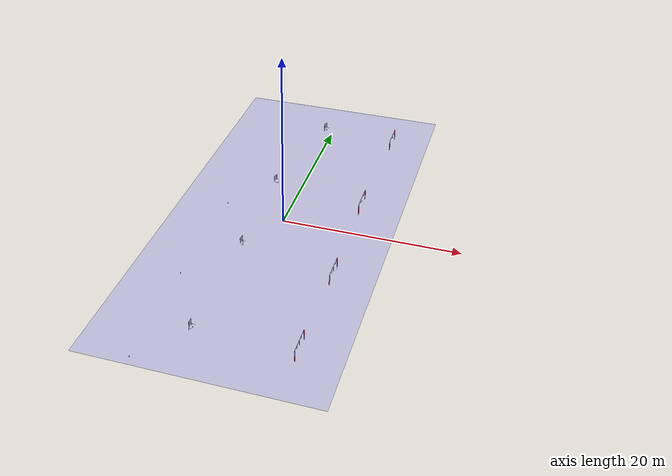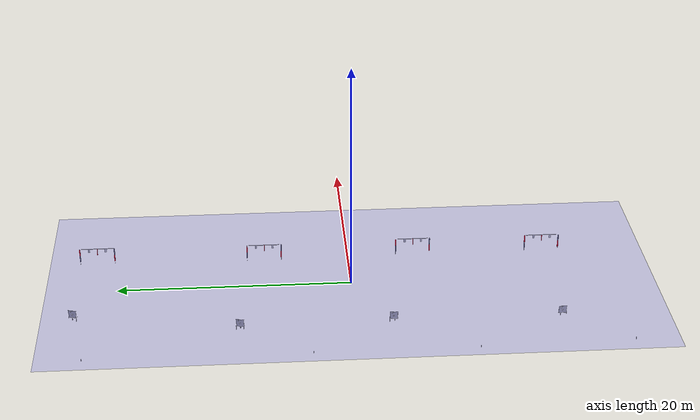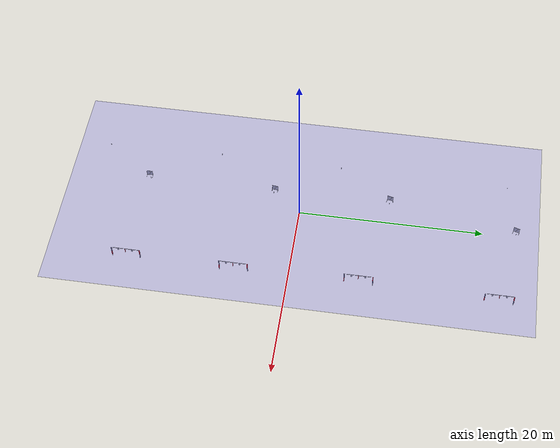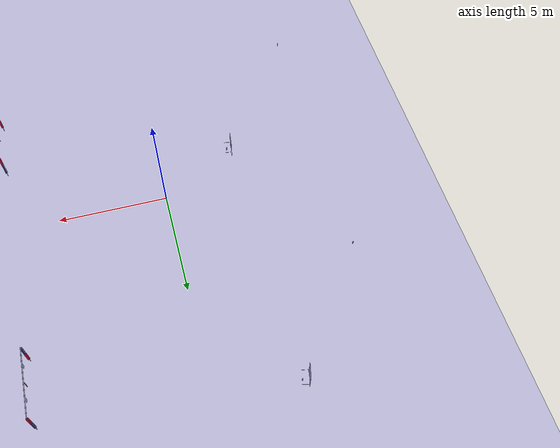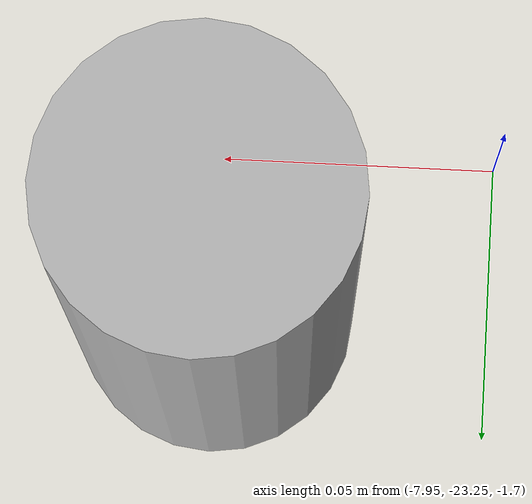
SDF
<sdf version="1.9">
 <world name="robosub_2024">
  <scene>
   <sky><clouds><speed>12</speed></clouds></sky>
   <ambient>0.4 0.4 0.4 1</ambient>
   <background>0.7 0.7 0.7 1</background>
   <shadows>0</shadows>
   <grid>false</grid>
  </scene>
  <physics name="1ms" type="ignored">
   <max_step_size>0.001</max_step_size>
   <real_time_factor>1.0</real_time_factor>
  </physics>
  <plugin filename="gz-sim-physics-system" name="gz::sim::systems::Physics"/>
  <plugin filename="gz-sim-user-commands-system" name="gz::sim::systems::UserCommands"/>
  <plugin filename="gz-sim-scene-broadcaster-system" name="gz::sim::systems::SceneBroadcaster"/>
  <plugin filename="gz-sim-sensors-system" name="gz::sim::systems::Sensors">
   <render_engine>ogre2</render_engine>
  </plugin>
  <plugin filename="gz-sim-dvl-system" name="gz::sim::systems::DopplerVelocityLogSystem"/>
  <plugin filename="gz-sim-buoyancy-system" name="gz::sim::systems::Buoyancy">
   <graded_buoyancy>
    <default_density>1000</default_density>
    <density_change><above_depth>0</above_depth><density>1</density></density_change>
   </graded_buoyancy>
  </plugin>
  <spherical_coordinates>
   <surface_model>EARTH_WGS84</surface_model>
   <world_frame_orientation>ENU</world_frame_orientation>
   <latitude_deg>33.70175</latitude_deg>
   <longitude_deg>-117.78036</longitude_deg>
   <elevation>0.4</elevation>
   <heading_deg>100</heading_deg>
  </spherical_coordinates>
  <magnetic_field>5e-06 2.4e-05 3.9e-05</magnetic_field>
  <light type="directional" name="sun1">
   <pose>50 0 150 0 0 0</pose>
   <diffuse>1 1 1 1</diffuse>
   <specular>0.1 0.1 0.1 1</specular>
   <direction>0.3 0.3 -1</direction>
   <cast_shadows>false</cast_shadows>
  </light>
  <light type="directional" name="sun_diffuse_4">
   <pose>20 0 -90 0 0 0</pose>
   <diffuse>0.9 0.9 0.9 1</diffuse>
   <specular>0.2 0.2 0.2 1</specular>
   <direction>-1 0 0</direction>
   <cast_shadows>false</cast_shadows>
  </light>
  <model name="Water">
   <link name="link">
    <visual name="visual">
     <geometry><box><size>25 52 0.02</size></box></geometry>
     <transparency>0.8</transparency>
     <cast_shadows>0</cast_shadows>
     <material>
      <ambient>0.2 0.2 0.9 1</ambient>
      <diffuse>0.2 0.2 0.9 1</diffuse>
      <specular>0.1 0.1 0.3 1</specular>
      <emissive>0 0 0 1</emissive>
     </material>
    </visual>
   </link>
   <pose>0 0 0.4 0 0 0</pose>
   <static>true</static>
  </model>
  <model name="StartGate_A">
   <link name="link">
    <visual name="visual">
     <geometry>
      <mesh><uri>file:///home/mil/mil2/src/subjugator/simulation/models/startgate_2024/startgate.dae</uri></mesh>
     </geometry>
    </visual>
    <collision name="collision">
     <geometry>
      <mesh><uri>file:///home/mil/mil2/src/subjugator/simulation/models/startgate_2024/startgate.dae</uri></mesh>
     </geometry>
    </collision>
    <inertial>
     <mass>1</mass>
     <inertia><ixx>1</ixx><ixy>0</ixy><ixz>0</ixz><iyy>1</iyy><iyz>0</iyz><izz>1</izz></inertia>
    </inertial>
   </link>
   <pose>7.57 22.28 -0.4 0 0 -1.57</pose>
   <static>true</static>
  </model>
  <model name="Pinger_A1">
   <link name="link">
    <visual name="visual">
     <geometry><cylinder><radius>0.025</radius><length>0.185</length></cylinder></geometry>
    </visual>
   </link>
   <pose>-1.65 23.80 -1.60 0 0 0</pose>
   <static>true</static>
  </model>
  <model name="Torpedoes_A">
   <link name="link">
    <visual name="visual">
     <geometry>
      <mesh>
       <uri>file:///home/mil/mil2/src/subjugator/simulation/models/mapping_torpedoes_2024/mapping_torpedoes.dae</uri>
      </mesh>
     </geometry>
    </visual>
    <collision name="collision">
     <geometry>
      <mesh>
       <uri>file:///home/mil/mil2/src/subjugator/simulation/models/mapping_torpedoes_2024/mapping_torpedoes.dae</uri>
      </mesh>
     </geometry>
    </collision>
    <inertial>
     <mass>1</mass>
     <inertia><ixx>1</ixx><ixy>0</ixy><ixz>0</ixz><iyy>1</iyy><iyz>0</iyz><izz>1</izz></inertia>
    </inertial>
   </link>
   <pose>-1.83 23.77 -1.01 0 0 2.85</pose>
   <static>true</static>
  </model>
  <model name="Pinger_A2">
   <link name="link">
    <visual name="visual">
     <geometry><cylinder><radius>0.025</radius><length>0.185</length></cylinder></geometry>
    </visual>
   </link>
   <pose>-8.04 22.60 -1.60 0 0 0</pose>
   <static>true</static>
  </model>
  <model name="StartGate_B">
   <link name="link">
    <visual name="visual">
     <geometry>
      <mesh><uri>file:///home/mil/mil2/src/subjugator/simulation/models/startgate_2024/startgate.dae</uri></mesh>
     </geometry>
    </visual>
    <collision name="collision">
     <geometry>
      <mesh><uri>file:///home/mil/mil2/src/subjugator/simulation/models/startgate_2024/startgate.dae</uri></mesh>
     </geometry>
    </collision>
    <inertial>
     <mass>1</mass>
     <inertia><ixx>1</ixx><ixy>0</ixy><ixz>0</ixz><iyy>1</iyy><iyz>0</iyz><izz>1</izz></inertia>
    </inertial>
   </link>
   <pose>7.24 7.36 -0.4 0 0 -1.57</pose>
   <static>true</static>
  </model>
  <model name="Pinger_B1">
   <link name="link">
    <visual name="visual">
     <geometry><cylinder><radius>0.025</radius><length>0.185</length></cylinder></geometry>
    </visual>
   </link>
   <pose>-3.91 9.60 -1.60 0 0 0</pose>
   <static>true</static>
  </model>
  <model name="Torpedoes_B">
   <link name="link">
    <visual name="visual">
     <geometry>
      <mesh>
       <uri>file:///home/mil/mil2/src/subjugator/simulation/models/mapping_torpedoes_2024/mapping_torpedoes.dae</uri>
      </mesh>
     </geometry>
    </visual>
    <collision name="collision">
     <geometry>
      <mesh>
       <uri>file:///home/mil/mil2/src/subjugator/simulation/models/mapping_torpedoes_2024/mapping_torpedoes.dae</uri>
      </mesh>
     </geometry>
    </collision>
    <inertial>
     <mass>1</mass>
     <inertia><ixx>1</ixx><ixy>0</ixy><ixz>0</ixz><iyy>1</iyy><iyz>0</iyz><izz>1</izz></inertia>
    </inertial>
   </link>
   <pose>-4.20 9.64 -1.01 0 0 2.91</pose>
   <static>true</static>
  </model>
  <model name="Pinger_B2">
   <link name="link">
    <visual name="visual">
     <geometry><cylinder><radius>0.025</radius><length>0.185</length></cylinder></geometry>
    </visual>
   </link>
   <pose>-8.18 3.66 -1.60 0 0 0</pose>
   <static>true</static>
  </model>
  <model name="StartGate_C">
   <link name="link">
    <visual name="visual">
     <geometry>
      <mesh><uri>file:///home/mil/mil2/src/subjugator/simulation/models/startgate_2024/startgate.dae</uri></mesh>
     </geometry>
    </visual>
    <collision name="collision">
     <geometry>
      <mesh><uri>file:///home/mil/mil2/src/subjugator/simulation/models/startgate_2024/startgate.dae</uri></mesh>
     </geometry>
    </collision>
    <inertial>
     <mass>1</mass>
     <inertia><ixx>1</ixx><ixy>0</ixy><ixz>0</ixz><iyy>1</iyy><iyz>0</iyz><izz>1</izz></inertia>
    </inertial>
   </link>
   <pose>7.5 -6.08 -0.4 0 0 -1.57</pose>
   <static>true</static>
  </model>
  <model name="Pinger_C1">
   <link name="link">
    <visual name="visual">
     <geometry><cylinder><radius>0.025</radius><length>0.185</length></cylinder></geometry>
    </visual>
   </link>
   <pose>-3.64 -3.44 -1.60 0 0 0</pose>
   <static>true</static>
  </model>
  <model name="Torpedoes_C">
   <link name="link">
    <visual name="visual">
     <geometry>
      <mesh>
       <uri>file:///home/mil/mil2/src/subjugator/simulation/models/mapping_torpedoes_2024/mapping_torpedoes.dae</uri>
      </mesh>
     </geometry>
    </visual>
    <collision name="collision">
     <geometry>
      <mesh>
       <uri>file:///home/mil/mil2/src/subjugator/simulation/models/mapping_torpedoes_2024/mapping_torpedoes.dae</uri>
      </mesh>
     </geometry>
    </collision>
    <inertial>
     <mass>1</mass>
     <inertia><ixx>1</ixx><ixy>0</ixy><ixz>0</ixz><iyy>1</iyy><iyz>0</iyz><izz>1</izz></inertia>
    </inertial>
   </link>
   <pose>-3.85 -3.34 -1.01 0 0 3.02</pose>
   <static>true</static>
  </model>
  <model name="Pinger_C2">
   <link name="link">
    <visual name="visual">
     <geometry><cylinder><radius>0.025</radius><length>0.185</length></cylinder></geometry>
    </visual>
   </link>
   <pose>-8.24 -10.19 -1.60 0 0 0</pose>
   <static>true</static>
  </model>
  <model name="StartGate_D">
   <link name="link">
    <visual name="visual">
     <geometry>
      <mesh><uri>file:///home/mil/mil2/src/subjugator/simulation/models/startgate_2024/startgate.dae</uri></mesh>
     </geometry>
    </visual>
    <collision name="collision">
     <geometry>
      <mesh><uri>file:///home/mil/mil2/src/subjugator/simulation/models/startgate_2024/startgate.dae</uri></mesh>
     </geometry>
    </collision>
    <inertial>
     <mass>1</mass>
     <inertia><ixx>1</ixx><ixy>0</ixy><ixz>0</ixz><iyy>1</iyy><iyz>0</iyz><izz>1</izz></inertia>
    </inertial>
   </link>
   <pose>7.41 -17.84 -0.4 0 0 -1.57</pose>
   <static>true</static>
  </model>
  <model name="Pinger_D1">
   <link name="link">
    <visual name="visual">
     <geometry><cylinder><radius>0.025</radius><length>0.185</length></cylinder></geometry>
    </visual>
   </link>
   <pose>-3.73 -17.61 -1.60 0 0 0</pose>
   <static>true</static>
  </model>
  <model name="Torpedoes_D">
   <link name="link">
    <visual name="visual">
     <geometry>
      <mesh>
       <uri>file:///home/mil/mil2/src/subjugator/simulation/models/mapping_torpedoes_2024/mapping_torpedoes.dae</uri>
      </mesh>
     </geometry>
    </visual>
    <collision name="collision">
     <geometry>
      <mesh>
       <uri>file:///home/mil/mil2/src/subjugator/simulation/models/mapping_torpedoes_2024/mapping_torpedoes.dae</uri>
      </mesh>
     </geometry>
    </collision>
    <inertial>
     <mass>1</mass>
     <inertia><ixx>1</ixx><ixy>0</ixy><ixz>0</ixz><iyy>1</iyy><iyz>0</iyz><izz>1</izz></inertia>
    </inertial>
   </link>
   <pose>-3.93 -17.74 -1.01 0 0 -3.14</pose>
   <static>true</static>
  </model>
  <model name="Pinger_D2">
   <link name="link">
    <visual name="visual">
     <geometry><cylinder><radius>0.025</radius><length>0.185</length></cylinder></geometry>
    </visual>
   </link>
   <pose>-7.90 -23.22 -1.60 0 0 0</pose>
   <static>true</static>
  </model>
 </world>
</sdf>
